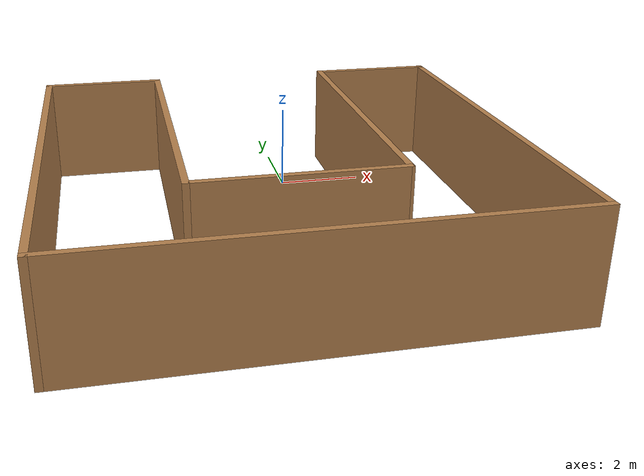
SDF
<?xml version='1.0'?>
<sdf version='1.6'>
  <model name='MyUworld'>
    <pose frame=''>-0.767602 -3.19027 0 0 -0 0</pose>
    <link name='Wall_0'>
      <collision name='Wall_0_Collision'>
        <geometry>
          <box>
            <size>2.92405 0.15 2.5</size>
          </box>
        </geometry>
        <pose frame=''>0 0 1.25 0 -0 0</pose>
      </collision>
      <visual name='Wall_0_Visual'>
        <pose frame=''>0 0 1.25 0 -0 0</pose>
        <geometry>
          <box>
            <size>2.92405 0.15 2.5</size>
          </box>
        </geometry>
        <material>
          <script>
            <uri>file://media/materials/scripts/gazebo.material</uri>
            <name>Gazebo/Wood</name>
          </script>
          <ambient>1 0 0 1</ambient>
        </material>
      </visual>
      <pose frame=''>-3.66328 4.9132 0 0 0 -3.14154</pose>
    </link>
    <link name='Wall_10'>
      <collision name='Wall_10_Collision'>
        <geometry>
          <box>
            <size>10.25 0.15 2.5</size>
          </box>
        </geometry>
        <pose frame=''>0 0 1.25 0 -0 0</pose>
      </collision>
      <visual name='Wall_10_Visual'>
        <pose frame=''>0 0 1.25 0 -0 0</pose>
        <geometry>
          <box>
            <size>10.25 0.15 2.5</size>
          </box>
        </geometry>
        <material>
          <script>
            <uri>file://media/materials/scripts/gazebo.material</uri>
            <name>Gazebo/Wood</name>
          </script>
          <ambient>1 0 0 1</ambient>
        </material>
      </visual>
      <pose frame=''>-0.000301 -4.93687 0 0 -0 3.14159</pose>
    </link>
    <link name='Wall_2'>
      <collision name='Wall_2_Collision'>
        <geometry>
          <box>
            <size>10 0.15 2.5</size>
          </box>
        </geometry>
        <pose frame=''>0 0 1.25 0 -0 0</pose>
      </collision>
      <visual name='Wall_2_Visual'>
        <pose frame=''>0 0 1.25 0 -0 0</pose>
        <geometry>
          <box>
            <size>10 0.15 2.5</size>
          </box>
        </geometry>
        <material>
          <script>
            <uri>file://media/materials/scripts/gazebo.material</uri>
            <name>Gazebo/Wood</name>
          </script>
          <ambient>1 0 0 1</ambient>
        </material>
      </visual>
      <pose frame=''>-5.0503 -0.011868 0 0 0 -1.5708</pose>
    </link>
    <link name='Wall_4'>
      <collision name='Wall_4_Collision'>
        <geometry>
          <box>
            <size>7.5 0.15 2.5</size>
          </box>
        </geometry>
        <pose frame=''>0 0 1.25 0 -0 0</pose>
      </collision>
      <visual name='Wall_4_Visual'>
        <pose frame=''>0 0 1.25 0 -0 0</pose>
        <geometry>
          <box>
            <size>7.5 0.15 2.5</size>
          </box>
        </geometry>
        <material>
          <script>
            <uri>file://media/materials/scripts/gazebo.material</uri>
            <name>Gazebo/Wood</name>
          </script>
          <ambient>1 0 0 1</ambient>
        </material>
      </visual>
      <pose frame=''>-2.27625 1.23826 0 0 0 -1.5708</pose>
    </link>
    <link name='Wall_6'>
      <collision name='Wall_6_Collision'>
        <geometry>
          <box>
            <size>4.52275 0.15 2.5</size>
          </box>
        </geometry>
        <pose frame=''>0 0 1.25 0 -0 0</pose>
      </collision>
      <visual name='Wall_6_Visual'>
        <pose frame=''>0 0 1.25 0 -0 0</pose>
        <geometry>
          <box>
            <size>4.52275 0.15 2.5</size>
          </box>
        </geometry>
        <material>
          <script>
            <uri>file://media/materials/scripts/gazebo.material</uri>
            <name>Gazebo/Wood</name>
          </script>
          <ambient>1 0 0 1</ambient>
        </material>
      </visual>
      <pose frame=''>-0.036678 -2.4368 0 0 0 -3e-05</pose>
    </link>
    <link name='Wall_7'>
      <collision name='Wall_7_Collision'>
        <geometry>
          <box>
            <size>7.52313 0.15 2.5</size>
          </box>
        </geometry>
        <pose frame=''>0 0 1.25 0 -0 0</pose>
      </collision>
      <visual name='Wall_7_Visual'>
        <pose frame=''>0 0 1.25 0 -0 0</pose>
        <geometry>
          <box>
            <size>7.52313 0.15 2.5</size>
          </box>
        </geometry>
        <material>
          <script>
            <uri>file://media/materials/scripts/gazebo.material</uri>
            <name>Gazebo/Wood</name>
          </script>
          <ambient>1 0 0 1</ambient>
        </material>
      </visual>
      <pose frame=''>2.17001 1.2497 0 0 -0 1.57003</pose>
    </link>
    <link name='Wall_8'>
      <collision name='Wall_8_Collision'>
        <geometry>
          <box>
            <size>3.00383 0.15 2.5</size>
          </box>
        </geometry>
        <pose frame=''>0 0 1.25 0 -0 0</pose>
      </collision>
      <visual name='Wall_8_Visual'>
        <pose frame=''>0 0 1.25 0 -0 0</pose>
        <geometry>
          <box>
            <size>3.00383 0.15 2.5</size>
          </box>
        </geometry>
        <material>
          <script>
            <uri>file://media/materials/scripts/gazebo.material</uri>
            <name>Gazebo/Wood</name>
          </script>
          <ambient>1 0 0 1</ambient>
        </material>
      </visual>
      <pose frame=''>3.62283 4.9247 0 0 0 -0.008105</pose>
    </link>
    <link name='Wall_9'>
      <collision name='Wall_9_Collision'>
        <geometry>
          <box>
            <size>10 0.15 2.5</size>
          </box>
        </geometry>
        <pose frame=''>0 0 1.25 0 -0 0</pose>
      </collision>
      <visual name='Wall_9_Visual'>
        <pose frame=''>0 0 1.25 0 -0 0</pose>
        <geometry>
          <box>
            <size>10 0.15 2.5</size>
          </box>
        </geometry>
        <material>
          <script>
            <uri>file://media/materials/scripts/gazebo.material</uri>
            <name>Gazebo/Wood</name>
          </script>
          <ambient>1 0 0 1</ambient>
        </material>
      </visual>
      <pose frame=''>5.0497 -0.011868 0 0 0 -1.5708</pose>
    </link>
    <static>1</static>
  </model>
</sdf>
